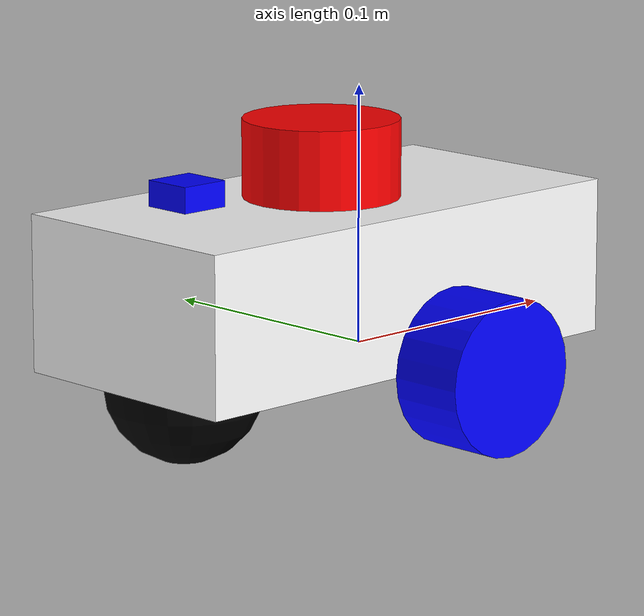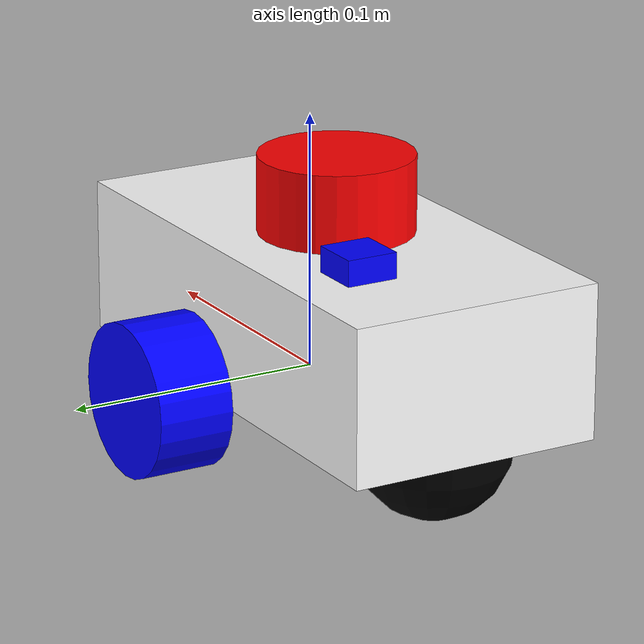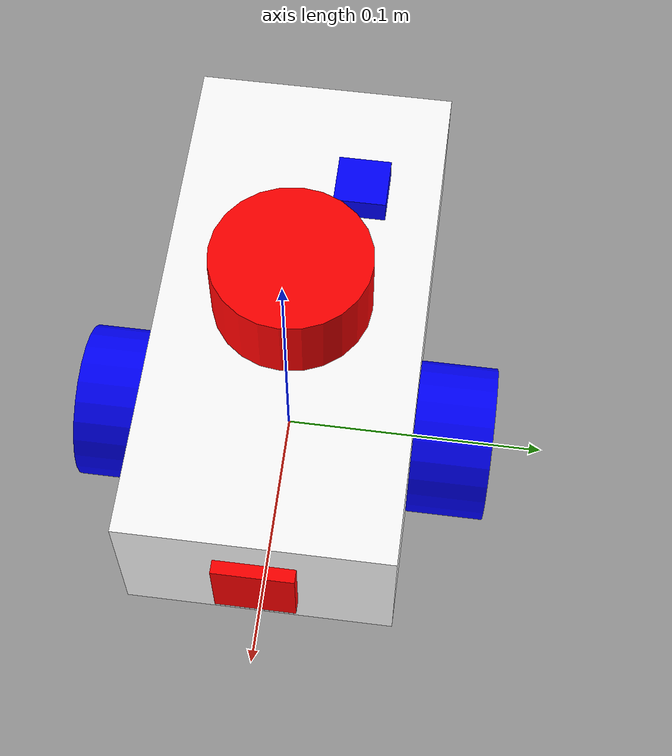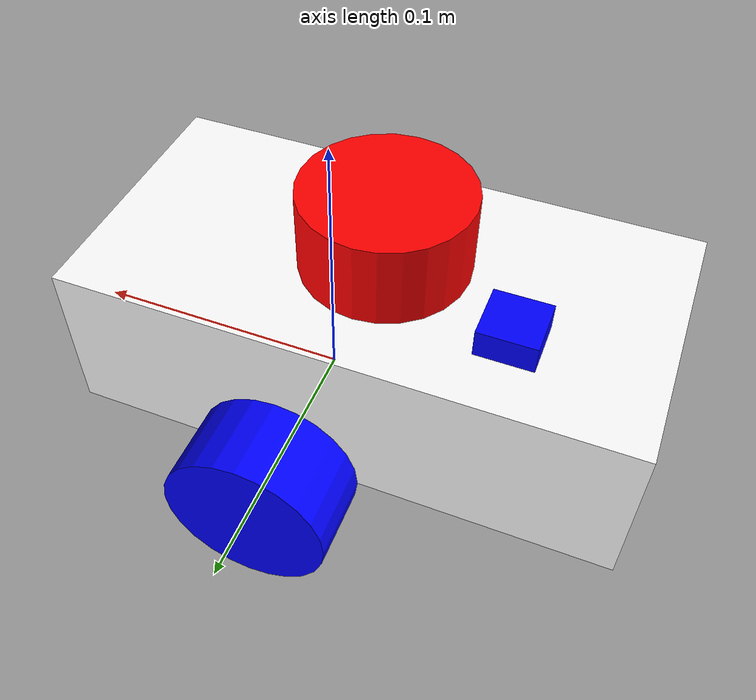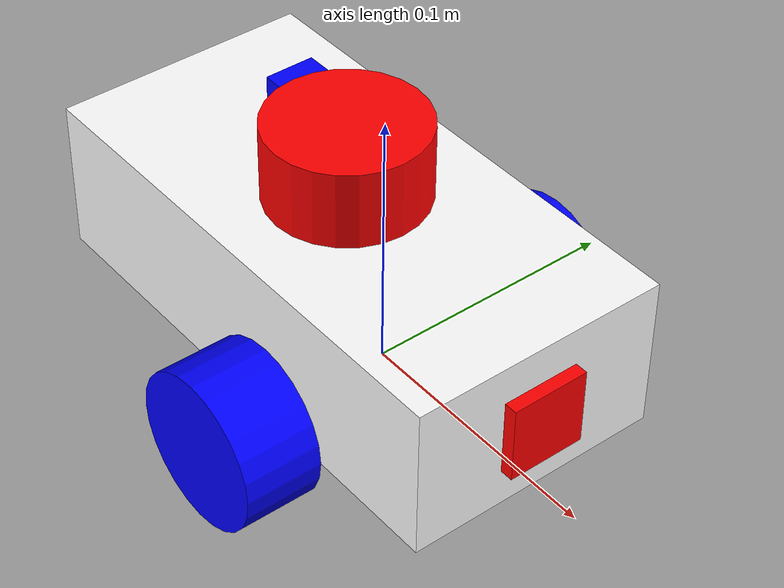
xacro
<?xml version="1.0"?>
<robot xmlns:xacro="http://www.ros.org/wiki/xacro" name="urdf_tutorial">

    <!-- MACROS -->
    <xacro:include filename="macros.xacro"/>

    <!-- COLOR -->
    <material name="white">
        <color rgba="1 1 1 1" />
    </material>

    <material name="blue">
        <color rgba="0 0 1 1"/>
    </material>

    <material name="black">
        <color rgba="0 0 0 1"/>
    </material>

    <material name="red">
        <color rgba="1 0 0 1"/>
    </material>

    <!-- BASE LINK -->
    <link name="base_link">
    </link>

    <!-- BODY LINK -->
    <joint name="body_joint" type="fixed">
        <parent link="base_link"/>
        <child link="body"/>
        <origin xyz="-0.12 0 0"/>
    </joint>

    <link name="body">
        <visual>
            <origin xyz="0.1 0 0.03"/>
            <geometry>
                <box size="0.2 0.1 0.06"/>
            </geometry>
            <material name="white"/>
        </visual>
        <collision>
            <origin xyz="0.1 0 0.03"/>
            <geometry>
                <box size="0.2 0.1 0.06"/>
            </geometry>
        </collision>
        <xacro:inertial_box mass="0.5" x="0.2" y="0.1" z="0.06">
            <origin xyz="0.1 0 0.03" rpy="0 0 0"/>
        </xacro:inertial_box>
    </link>

    <gazebo reference="body">
        <material>Gazebo/White</material>
    </gazebo>

    <!-- LEFT WHEEL LINK -->
    <joint name="left_wheel_joint" type="continuous">
        <parent link="base_link"/>
        <child link="left_wheel"/>
        <origin xyz="0 0.065 0" rpy="-${pi/2} 0 0" />
        <axis xyz="0 0 1"/>
    </joint>

    <link name="left_wheel">
        <visual>
            <geometry>
                <cylinder radius="0.03" length="0.03"/>
            </geometry>
            <material name="blue"/>
        </visual>
        <collision>
            <geometry>
                <cylinder radius="0.03" length="0.03"/>
            </geometry>
        </collision>
        <xacro:inertial_cylinder mass="0.1" length="0.03" radius="0.03">
            <origin xyz="0 0 0" rpy="0 0 0"/>
        </xacro:inertial_cylinder>
    </link>

    <gazebo reference="left_wheel">
        <material>Gazebo/Black</material>
    </gazebo>

    <!-- RIGHT WHEEL LINK -->
    <joint name="right_wheel_joint" type="continuous">
        <parent link="base_link"/>
        <child link="right_wheel"/>
        <origin xyz="0 -0.065 0" rpy="${pi/2} 0 0" />
        <axis xyz="0 0 -1"/>
    </joint>

    <link name="right_wheel">
        <visual>
            <geometry>
                <cylinder radius="0.03" length="0.03"/>
            </geometry>
            <material name="blue"/>
        </visual>
        <collision>
            <geometry>
                <cylinder radius="0.03" length="0.03"/>
            </geometry>
        </collision>
        <xacro:inertial_cylinder mass="0.1" length="0.03" radius="0.03">
            <origin xyz="0 0 0" rpy="0 0 0"/>
        </xacro:inertial_cylinder>
    </link>

    <gazebo reference="right_wheel">
        <material>Gazebo/Black</material>
    </gazebo>

    <!-- CASTER WHEEL LINK -->
    <joint name="caster_wheel_joint" type="fixed">
        <parent link="body"/>
        <child link="caster_wheel"/>
        <origin xyz="0.03 0 0"/>
    </joint>

    <link name="caster_wheel">
        <visual>
            <geometry>
                <sphere radius="0.03"/>
            </geometry>
            <material name="black"/>
        </visual>
        <collision>
            <geometry>
                <sphere radius="0.03"/>
            </geometry>
        </collision>
        <xacro:inertial_sphere mass="0.1" radius="0.03">
            <origin xyz="0 0 0" rpy="0 0 0"/>
        </xacro:inertial_sphere>
    </link>

    <gazebo reference="caster_wheel">
        <material>Gazebo/Blue</material>

        <mu1 value="0.001"/>
        <mu2 value="0.001"/>
    </gazebo>

    <!-- LiDAR -->
    <joint name="laser_joint" type="fixed">
        <parent link="body"/>
        <child link="laser_frame"/>
        <origin xyz="0.1 0 0.075" rpy="0 0 0"/>
    </joint>

    <link name="laser_frame">
        <visual>
            <geometry>
                <cylinder radius="0.03" length="0.03"/>
            </geometry>
            <material name="red"/>
        </visual>
        <collision>
            <geometry>
                <cylinder radius="0.03" length="0.03"/>
            </geometry>
        </collision>
    </link>

    <!-- CAMERA -->
    <joint name="camera_joint" type="fixed">
        <parent link="body"/>
        <child link="camera_link"/>
        <origin xyz="0.20 0 0.03" rpy="0 0 0"/>
    </joint>

    <link name="camera_link">
        <visual>
            <geometry>
                <box size="0.01 0.03 0.03"/>
            </geometry>
            <material name="red"/>
        </visual>
        <collision>
            <geometry>
                <box size="0.01 0.03 0.03"/>
            </geometry>
        </collision>
    </link>

    <joint name="camera_optical_joint" type="fixed">
        <parent link="camera_link"/>
        <child link="camera_link_optical"/>
        <origin xyz="0 0 0" rpy="${-pi/2} 0 ${-pi/2}"/>
    </joint>

    <link name="camera_link_optical">
    </link>

    <!-- IMU -->
    <joint name="imu_link_joint" type="fixed">
        <parent link="body"/>
        <child link="imu_link"/>
        <origin xyz="0.05 0.02 0.06" rpy="0 0 0"/> <!-- 좀 더 분리된 위치 (z: 0.08) -> 기존 0.05 -->
    </joint>

    <link name="imu_link">
        <visual>
            <geometry>
                <box size="0.02 0.02 0.02"/>
            </geometry>
            <material name="blue"/>
        </visual>
        <collision>
            <geometry>
                <box size="0.02 0.02 0.02"/>
            </geometry>
        </collision>
        <xacro:inertial_box mass="0.01" x="0.02" y="0.02" z="0.02">
            <origin xyz="0 0 0" rpy="0 0 0"/>
        </xacro:inertial_box>
    </link>

    <!-- GAZEBO -->
    <xacro:include filename="gazebo.xacro"/>
    <xacro:include filename="lidar.xacro"/>
    <xacro:include filename="depth.xacro"/>
    <xacro:include filename="imu.xacro"/>

</robot>
